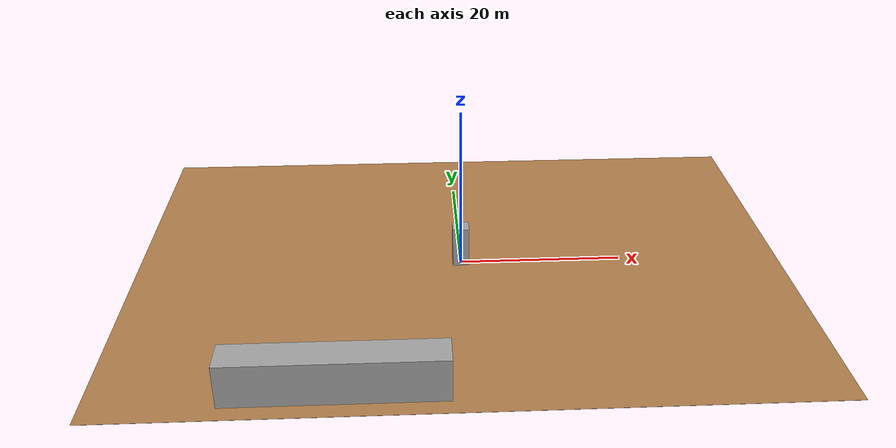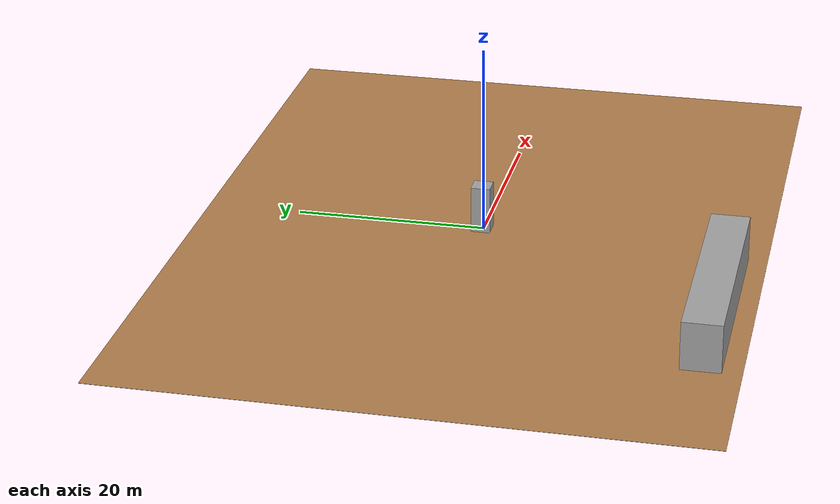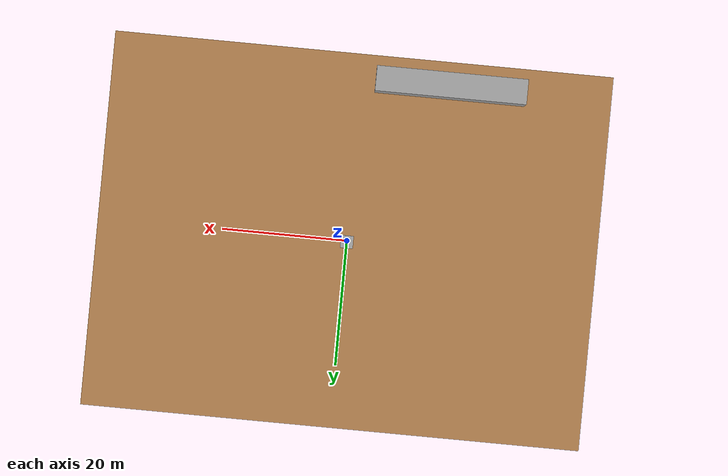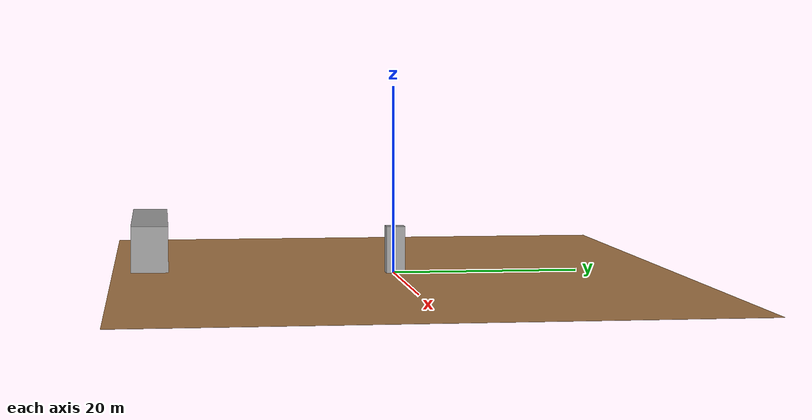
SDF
<?xml version="1.0"?>
<sdf version="1.5">
 <model name="outdoor_space">
   <static>true</static>
   <link name="outdoor_surf">
    <collision name="outdoor_collision">
     <geometry>
       <mesh>
         <uri>model://outdoor_space/meshes/ground.dae</uri>
       </mesh>
     </geometry>

    </collision>

     <visual name="surface_mesh">
      <cast_shadows>true</cast_shadows>
      <geometry>
       <mesh>
         <uri>model://outdoor/meshes/ground.dae</uri>
       </mesh>
      </geometry>
      <material>
            <script>
              <uri>file://media/materials/scripts/gazebo.material</uri>
              <name>Gazebo/Wood</name>
            </script>
          </material>
     </visual>
   </link>

<static>true</static>
   <link name="outdoor_building1">
    <collision name="building1_collision">
     <geometry>
       <mesh>
         <uri>model://outdoor_space/meshes/building1.dae</uri>
       </mesh>
     </geometry>
    </collision>

     <visual name="building1_mesh">
      <cast_shadows>true</cast_shadows>
      <geometry>
       <mesh>
         <uri>model://outdoor_space/meshes/building1.dae</uri>
       </mesh>
      </geometry>
      <material>
        <script>
            <uri>model://outdoor_space/materials/scripts</uri>
          <uri>model://outdoor_space/materials/textures</uri>
          <name>outdoor_space/building</name>
        </script>
      </material>
     </visual>
   </link>

<static>true</static>
   <link name="outdoor_building2">
    <collision name="building2_collision">
     <geometry>
       <mesh>
         <uri>model://outdoor_space/meshes/building2.dae</uri>
       </mesh>
     </geometry>
    </collision>

     <visual name="building2_mesh">
      <cast_shadows>true</cast_shadows>
      <geometry>
       <mesh>
         <uri>model://outdoor_space/meshes/building2.dae</uri>
       </mesh>
      </geometry>
      <material>
        <script>
          <uri>model://outdoor_space/materials/scripts</uri>
          <uri>model://outdoor_space/materials/textures</uri>
          <name>outdoor_space/building</name>
        </script>
      </material>
     </visual>
   </link>
 </model>
</sdf>
